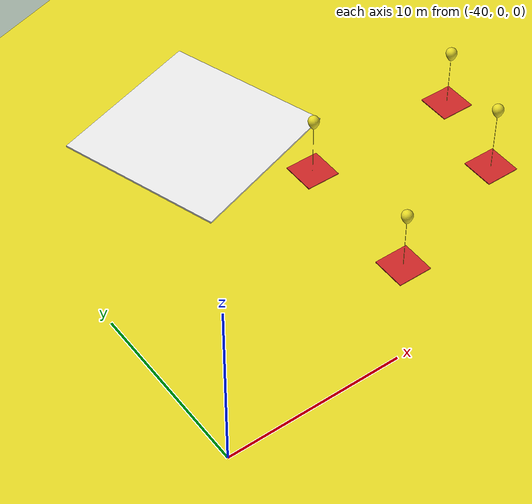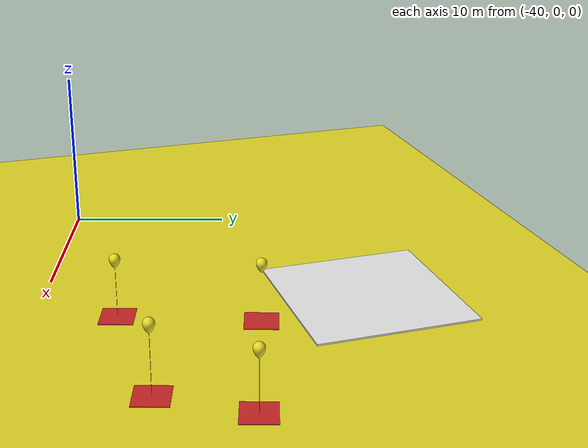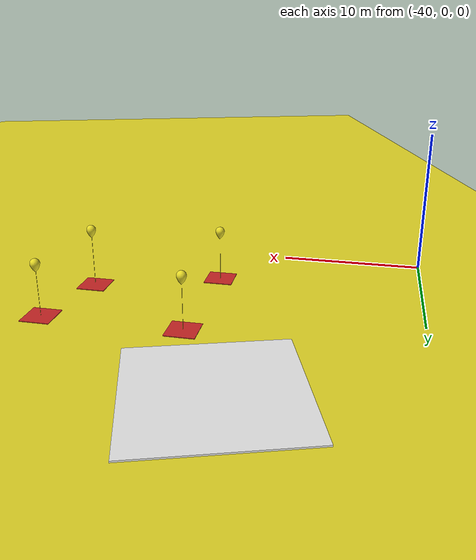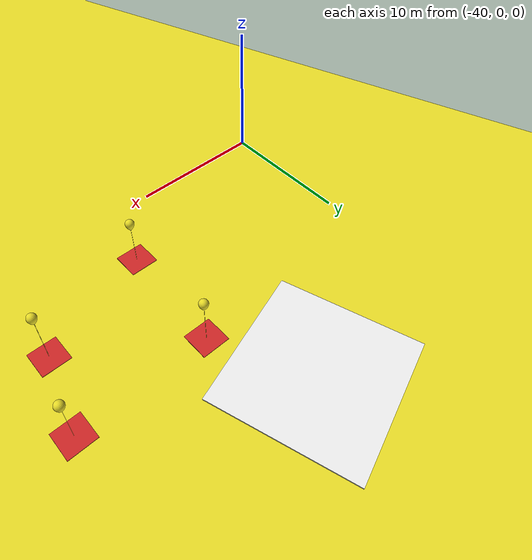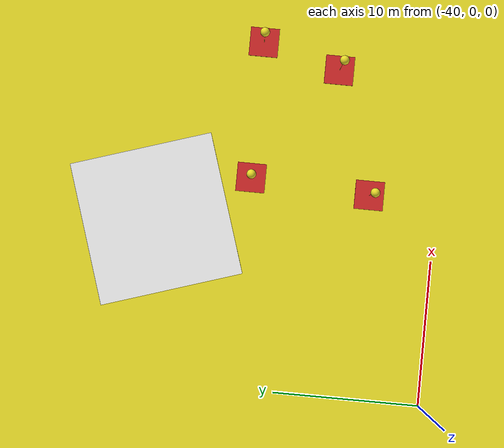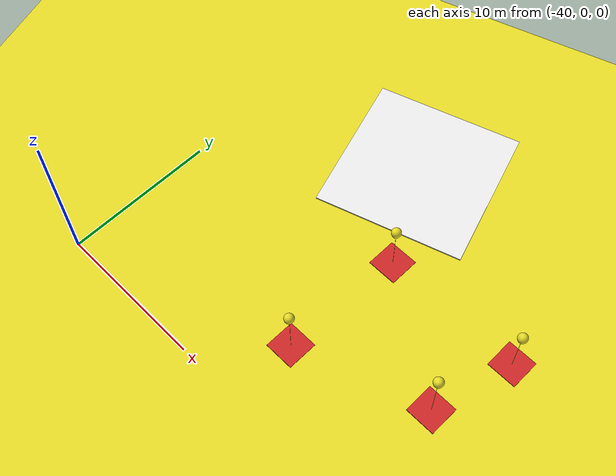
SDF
<sdf version="1.6">
 <world name="default">
  <model name="Balloon4.5m_clone_1">
   <link name="link_0">
    <pose>0 0 -0.025 0 -0 0</pose>
    <inertial>
     <mass>100</mass>
     <inertia>
      <ixx>0.166667</ixx>
      <ixy>0</ixy>
      <ixz>0</ixz>
      <iyy>0.166667</iyy>
      <iyz>0</iyz>
      <izz>0.166667</izz>
     </inertia>
    </inertial>
    <visual name="visual">
     <geometry><mesh><uri>/home/varun/MBZIRC_Arena/Balloon/Base.dae</uri><scale>1 1 1</scale></mesh></geometry>
     <material>
      <lighting>1</lighting>
      <script><uri>file://media/materials/scripts/gazebo.material</uri><name>Gazebo/Red</name></script>
      <shader type="vertex"><normal_map>__default__</normal_map></shader>
      <ambient>0.3 0.3 0.3 1</ambient>
      <diffuse>1 1 1 1</diffuse>
      <specular>0.1 0.1 0.1 1</specular>
      <emissive>0 0 0 1</emissive>
     </material>
    </visual>
    <collision name="collision">
     <geometry><mesh><uri>/home/varun/MBZIRC_Arena/Balloon/Base.dae</uri><scale>1 1 1</scale></mesh></geometry>
     <surface>
      <friction>
       <ode><mu>1</mu><mu2>1</mu2><fdir1>0 0 0</fdir1><slip1>0</slip1><slip2>0</slip2></ode>
       <torsional>
        <coefficient>1</coefficient>
        <patch_radius>0</patch_radius>
        <surface_radius>0</surface_radius>
        <use_patch_radius>1</use_patch_radius>
        <ode><slip>0</slip></ode>
       </torsional>
      </friction>
      <bounce><restitution_coefficient>0</restitution_coefficient><threshold>1e+06</threshold></bounce>
      <contact>
       <collide_without_contact>0</collide_without_contact>
       <collide_without_contact_bitmask>1</collide_without_contact_bitmask>
       <collide_bitmask>1</collide_bitmask>
       <ode>
        <soft_cfm>0</soft_cfm>
        <soft_erp>0.2</soft_erp>
        <kp>1e+13</kp>
        <kd>1</kd>
        <max_vel>0.01</max_vel>
        <min_depth>0</min_depth>
       </ode>
       <bullet>
        <split_impulse>1</split_impulse>
        <split_impulse_penetration_threshold>-0.01</split_impulse_penetration_threshold>
        <soft_cfm>0</soft_cfm>
        <soft_erp>0.2</soft_erp>
        <kp>1e+13</kp>
        <kd>1</kd>
       </bullet>
      </contact>
     </surface>
    </collision>
   </link>
   <link name="link_1">
    <pose>-0 -0 0.025 0 -0 0</pose>
    <inertial>
     <mass>0.2</mass>
     <inertia>
      <ixx>0.166667</ixx>
      <ixy>0</ixy>
      <ixz>0</ixz>
      <iyy>0.166667</iyy>
      <iyz>0</iyz>
      <izz>0.166667</izz>
     </inertia>
     <pose>0 0 4.5 0 -0 0</pose>
    </inertial>
    <visual name="visual">
     <geometry>
      <mesh><uri>/home/varun/MBZIRC_Arena/Balloon/Balloon4.5m.dae</uri><scale>1 1 1</scale></mesh>
     </geometry>
     <material>
      <lighting>1</lighting>
      <script><uri>file://media/materials/scripts/gazebo.material</uri><name>Gazebo/Yellow</name></script>
      <shader type="pixel"><normal_map>__default__</normal_map></shader>
      <ambient>0.3 0.3 0.3 1</ambient>
      <diffuse>0.7 0.7 0.7 1</diffuse>
      <specular>0.01 0.01 0.01 1</specular>
      <emissive>0 0 0 1</emissive>
     </material>
    </visual>
    <collision name="collision">
     <geometry>
      <mesh><uri>/home/varun/MBZIRC_Arena/Balloon/Balloon4.5m.dae</uri><scale>1 1 1</scale></mesh>
     </geometry>
     <surface>
      <friction>
       <ode><mu>1</mu><mu2>1</mu2><fdir1>0 0 0</fdir1><slip1>0</slip1><slip2>0</slip2></ode>
       <torsional>
        <coefficient>1</coefficient>
        <patch_radius>0</patch_radius>
        <surface_radius>0</surface_radius>
        <use_patch_radius>1</use_patch_radius>
        <ode><slip>0</slip></ode>
       </torsional>
      </friction>
      <bounce><restitution_coefficient>0</restitution_coefficient><threshold>1e+06</threshold></bounce>
      <contact>
       <collide_without_contact>0</collide_without_contact>
       <collide_without_contact_bitmask>1</collide_without_contact_bitmask>
       <collide_bitmask>1</collide_bitmask>
       <ode>
        <soft_cfm>0</soft_cfm>
        <soft_erp>0.2</soft_erp>
        <kp>1e+13</kp>
        <kd>1</kd>
        <max_vel>0.01</max_vel>
        <min_depth>0</min_depth>
       </ode>
       <bullet>
        <split_impulse>1</split_impulse>
        <split_impulse_penetration_threshold>-0.01</split_impulse_penetration_threshold>
        <soft_cfm>0</soft_cfm>
        <soft_erp>0.2</soft_erp>
        <kp>1e+13</kp>
        <kd>1</kd>
       </bullet>
      </contact>
     </surface>
    </collision>
   </link>
   <joint name="ball_joint" type="ball">
    <parent>link_0</parent>
    <child>link_1</child>
    <physics>
     <ode><limit><cfm>0</cfm><erp>0.2</erp></limit><suspension><cfm>0</cfm><erp>0.2</erp></suspension></ode>
    </physics>
   </joint>
   <static>0</static>
   <plugin name="wind_push" filename="libwind_push.so"/>
   <pose>-17.3798 7.50598 -0.132557 -0.000303 -0 0.000103</pose>
  </model>
  <model name="Balloon4m_clone">
   <link name="link_0">
    <pose>0 0 -0.025 0 -0 0</pose>
    <inertial>
     <mass>100</mass>
     <inertia>
      <ixx>0.166667</ixx>
      <ixy>0</ixy>
      <ixz>0</ixz>
      <iyy>0.166667</iyy>
      <iyz>0</iyz>
      <izz>0.166667</izz>
     </inertia>
    </inertial>
    <visual name="visual">
     <geometry><mesh><uri>/home/varun/MBZIRC_Arena/Balloon/Base.dae</uri><scale>1 1 1</scale></mesh></geometry>
     <material>
      <lighting>1</lighting>
      <script><uri>file://media/materials/scripts/gazebo.material</uri><name>Gazebo/Red</name></script>
      <shader type="vertex"><normal_map>__default__</normal_map></shader>
      <ambient>0.3 0.3 0.3 1</ambient>
      <diffuse>1 1 1 1</diffuse>
      <specular>0.1 0.1 0.1 1</specular>
      <emissive>0 0 0 1</emissive>
     </material>
    </visual>
    <collision name="collision">
     <geometry><mesh><uri>/home/varun/MBZIRC_Arena/Balloon/Base.dae</uri><scale>1 1 1</scale></mesh></geometry>
     <surface>
      <friction>
       <ode><mu>1</mu><mu2>1</mu2><fdir1>0 0 0</fdir1><slip1>0</slip1><slip2>0</slip2></ode>
       <torsional>
        <coefficient>1</coefficient>
        <patch_radius>0</patch_radius>
        <surface_radius>0</surface_radius>
        <use_patch_radius>1</use_patch_radius>
        <ode><slip>0</slip></ode>
       </torsional>
      </friction>
      <bounce><restitution_coefficient>0</restitution_coefficient><threshold>1e+06</threshold></bounce>
      <contact>
       <collide_without_contact>0</collide_without_contact>
       <collide_without_contact_bitmask>1</collide_without_contact_bitmask>
       <collide_bitmask>1</collide_bitmask>
       <ode>
        <soft_cfm>0</soft_cfm>
        <soft_erp>0.2</soft_erp>
        <kp>1e+13</kp>
        <kd>1</kd>
        <max_vel>0.01</max_vel>
        <min_depth>0</min_depth>
       </ode>
       <bullet>
        <split_impulse>1</split_impulse>
        <split_impulse_penetration_threshold>-0.01</split_impulse_penetration_threshold>
        <soft_cfm>0</soft_cfm>
        <soft_erp>0.2</soft_erp>
        <kp>1e+13</kp>
        <kd>1</kd>
       </bullet>
      </contact>
     </surface>
    </collision>
   </link>
   <link name="link_1">
    <pose>-0 -0 0.025 0 -0 0</pose>
    <inertial>
     <mass>0.2</mass>
     <inertia>
      <ixx>0.166667</ixx>
      <ixy>0</ixy>
      <ixz>0</ixz>
      <iyy>0.166667</iyy>
      <iyz>0</iyz>
      <izz>0.166667</izz>
     </inertia>
     <pose>0 0 4 0 -0 0</pose>
    </inertial>
    <visual name="visual">
     <geometry>
      <mesh><uri>/home/varun/MBZIRC_Arena/Balloon/Balloon4m.dae</uri><scale>1 1 1</scale></mesh>
     </geometry>
     <material>
      <lighting>1</lighting>
      <script><uri>file://media/materials/scripts/gazebo.material</uri><name>Gazebo/Yellow</name></script>
      <shader type="pixel"><normal_map>__default__</normal_map></shader>
      <ambient>0.3 0.3 0.3 1</ambient>
      <diffuse>0.7 0.7 0.7 1</diffuse>
      <specular>0.01 0.01 0.01 1</specular>
      <emissive>0 0 0 1</emissive>
     </material>
    </visual>
    <collision name="collision">
     <geometry>
      <mesh><uri>/home/varun/MBZIRC_Arena/Balloon/Balloon4m.dae</uri><scale>1 1 1</scale></mesh>
     </geometry>
     <surface>
      <friction>
       <ode><mu>1</mu><mu2>1</mu2><fdir1>0 0 0</fdir1><slip1>0</slip1><slip2>0</slip2></ode>
       <torsional>
        <coefficient>1</coefficient>
        <patch_radius>0</patch_radius>
        <surface_radius>0</surface_radius>
        <use_patch_radius>1</use_patch_radius>
        <ode><slip>0</slip></ode>
       </torsional>
      </friction>
      <bounce><restitution_coefficient>0</restitution_coefficient><threshold>1e+06</threshold></bounce>
      <contact>
       <collide_without_contact>0</collide_without_contact>
       <collide_without_contact_bitmask>1</collide_without_contact_bitmask>
       <collide_bitmask>1</collide_bitmask>
       <ode>
        <soft_cfm>0</soft_cfm>
        <soft_erp>0.2</soft_erp>
        <kp>1e+13</kp>
        <kd>1</kd>
        <max_vel>0.01</max_vel>
        <min_depth>0</min_depth>
       </ode>
       <bullet>
        <split_impulse>1</split_impulse>
        <split_impulse_penetration_threshold>-0.01</split_impulse_penetration_threshold>
        <soft_cfm>0</soft_cfm>
        <soft_erp>0.2</soft_erp>
        <kp>1e+13</kp>
        <kd>1</kd>
       </bullet>
      </contact>
     </surface>
    </collision>
   </link>
   <joint name="ball_joint" type="ball">
    <parent>link_0</parent>
    <child>link_1</child>
    <physics>
     <ode><limit><cfm>0</cfm><erp>0.2</erp></limit><suspension><cfm>0</cfm><erp>0.2</erp></suspension></ode>
    </physics>
   </joint>
   <static>0</static>
   <plugin name="wind_push" filename="libwind_push.so"/>
   <pose>-25.8445 4.64631 -0.132468 0 0.000214 -6.1e-05</pose>
  </model>
  <model name="Balloon5m">
   <link name="link_0">
    <pose>0 0 -0.025 0 -0 0</pose>
    <inertial>
     <mass>100</mass>
     <inertia>
      <ixx>0.166667</ixx>
      <ixy>0</ixy>
      <ixz>0</ixz>
      <iyy>0.166667</iyy>
      <iyz>0</iyz>
      <izz>0.166667</izz>
     </inertia>
    </inertial>
    <visual name="visual">
     <geometry><mesh><uri>/home/varun/MBZIRC_Arena/Balloon/Base.dae</uri><scale>1 1 1</scale></mesh></geometry>
     <material>
      <lighting>1</lighting>
      <script><uri>file://media/materials/scripts/gazebo.material</uri><name>Gazebo/Red</name></script>
      <shader type="vertex"><normal_map>__default__</normal_map></shader>
      <ambient>0.3 0.3 0.3 1</ambient>
      <diffuse>1 1 1 1</diffuse>
      <specular>0.1 0.1 0.1 1</specular>
      <emissive>0 0 0 1</emissive>
     </material>
    </visual>
    <collision name="collision">
     <geometry><mesh><uri>/home/varun/MBZIRC_Arena/Balloon/Base.dae</uri><scale>1 1 1</scale></mesh></geometry>
     <surface>
      <friction>
       <ode><mu>1</mu><mu2>1</mu2><fdir1>0 0 0</fdir1><slip1>0</slip1><slip2>0</slip2></ode>
       <torsional>
        <coefficient>1</coefficient>
        <patch_radius>0</patch_radius>
        <surface_radius>0</surface_radius>
        <use_patch_radius>1</use_patch_radius>
        <ode><slip>0</slip></ode>
       </torsional>
      </friction>
      <bounce><restitution_coefficient>0</restitution_coefficient><threshold>1e+06</threshold></bounce>
      <contact>
       <collide_without_contact>0</collide_without_contact>
       <collide_without_contact_bitmask>1</collide_without_contact_bitmask>
       <collide_bitmask>1</collide_bitmask>
       <ode>
        <soft_cfm>0</soft_cfm>
        <soft_erp>0.2</soft_erp>
        <kp>1e+13</kp>
        <kd>1</kd>
        <max_vel>0.01</max_vel>
        <min_depth>0</min_depth>
       </ode>
       <bullet>
        <split_impulse>1</split_impulse>
        <split_impulse_penetration_threshold>-0.01</split_impulse_penetration_threshold>
        <soft_cfm>0</soft_cfm>
        <soft_erp>0.2</soft_erp>
        <kp>1e+13</kp>
        <kd>1</kd>
       </bullet>
      </contact>
     </surface>
    </collision>
   </link>
   <link name="link_1">
    <pose>-0 -0 0.025 0 -0 0</pose>
    <inertial>
     <mass>0.2</mass>
     <inertia>
      <ixx>0.166667</ixx>
      <ixy>0</ixy>
      <ixz>0</ixz>
      <iyy>0.166667</iyy>
      <iyz>0</iyz>
      <izz>0.166667</izz>
     </inertia>
     <pose>0 0 5 0 -0 0</pose>
    </inertial>
    <visual name="visual">
     <geometry>
      <mesh><uri>/home/varun/MBZIRC_Arena/Balloon/Balloon5m.dae</uri><scale>1 1 1</scale></mesh>
     </geometry>
     <material>
      <lighting>1</lighting>
      <script><uri>file://media/materials/scripts/gazebo.material</uri><name>Gazebo/Yellow</name></script>
      <shader type="pixel"><normal_map>__default__</normal_map></shader>
      <ambient>0.3 0.3 0.3 1</ambient>
      <diffuse>0.7 0.7 0.7 1</diffuse>
      <specular>0.01 0.01 0.01 1</specular>
      <emissive>0 0 0 1</emissive>
     </material>
    </visual>
    <collision name="collision">
     <geometry>
      <mesh><uri>/home/varun/MBZIRC_Arena/Balloon/Balloon5m.dae</uri><scale>1 1 1</scale></mesh>
     </geometry>
     <surface>
      <friction>
       <ode><mu>1</mu><mu2>1</mu2><fdir1>0 0 0</fdir1><slip1>0</slip1><slip2>0</slip2></ode>
       <torsional>
        <coefficient>1</coefficient>
        <patch_radius>0</patch_radius>
        <surface_radius>0</surface_radius>
        <use_patch_radius>1</use_patch_radius>
        <ode><slip>0</slip></ode>
       </torsional>
      </friction>
      <bounce><restitution_coefficient>0</restitution_coefficient><threshold>1e+06</threshold></bounce>
      <contact>
       <collide_without_contact>0</collide_without_contact>
       <collide_without_contact_bitmask>1</collide_without_contact_bitmask>
       <collide_bitmask>1</collide_bitmask>
       <ode>
        <soft_cfm>0</soft_cfm>
        <soft_erp>0.2</soft_erp>
        <kp>1e+13</kp>
        <kd>1</kd>
        <max_vel>0.01</max_vel>
        <min_depth>0</min_depth>
       </ode>
       <bullet>
        <split_impulse>1</split_impulse>
        <split_impulse_penetration_threshold>-0.01</split_impulse_penetration_threshold>
        <soft_cfm>0</soft_cfm>
        <soft_erp>0.2</soft_erp>
        <kp>1e+13</kp>
        <kd>1</kd>
       </bullet>
      </contact>
     </surface>
    </collision>
   </link>
   <joint name="ball_joint" type="ball">
    <parent>link_0</parent>
    <child>link_1</child>
    <physics>
     <ode><limit><cfm>0</cfm><erp>0.2</erp></limit><suspension><cfm>0</cfm><erp>0.2</erp></suspension></ode>
    </physics>
   </joint>
   <static>0</static>
   <plugin name="wind_push" filename="libwind_push.so"/>
   <pose>-15.931 12.8942 -0.1324 0.000146 0 -2.3e-05</pose>
  </model>
  <model name="Balloon5m_clone_3">
   <link name="link_0">
    <pose>0 0 -0.025 0 -0 0</pose>
    <inertial>
     <mass>100</mass>
     <inertia>
      <ixx>0.166667</ixx>
      <ixy>0</ixy>
      <ixz>0</ixz>
      <iyy>0.166667</iyy>
      <iyz>0</iyz>
      <izz>0.166667</izz>
     </inertia>
    </inertial>
    <visual name="visual">
     <geometry><mesh><uri>/home/varun/MBZIRC_Arena/Balloon/Base.dae</uri><scale>1 1 1</scale></mesh></geometry>
     <material>
      <lighting>1</lighting>
      <script><uri>file://media/materials/scripts/gazebo.material</uri><name>Gazebo/Red</name></script>
      <shader type="vertex"><normal_map>__default__</normal_map></shader>
      <ambient>0.3 0.3 0.3 1</ambient>
      <diffuse>1 1 1 1</diffuse>
      <specular>0.1 0.1 0.1 1</specular>
      <emissive>0 0 0 1</emissive>
     </material>
    </visual>
    <collision name="collision">
     <geometry><mesh><uri>/home/varun/MBZIRC_Arena/Balloon/Base.dae</uri><scale>1 1 1</scale></mesh></geometry>
     <surface>
      <friction>
       <ode><mu>1</mu><mu2>1</mu2><fdir1>0 0 0</fdir1><slip1>0</slip1><slip2>0</slip2></ode>
       <torsional>
        <coefficient>1</coefficient>
        <patch_radius>0</patch_radius>
        <surface_radius>0</surface_radius>
        <use_patch_radius>1</use_patch_radius>
        <ode><slip>0</slip></ode>
       </torsional>
      </friction>
      <bounce><restitution_coefficient>0</restitution_coefficient><threshold>1e+06</threshold></bounce>
      <contact>
       <collide_without_contact>0</collide_without_contact>
       <collide_without_contact_bitmask>1</collide_without_contact_bitmask>
       <collide_bitmask>1</collide_bitmask>
       <ode>
        <soft_cfm>0</soft_cfm>
        <soft_erp>0.2</soft_erp>
        <kp>1e+13</kp>
        <kd>1</kd>
        <max_vel>0.01</max_vel>
        <min_depth>0</min_depth>
       </ode>
       <bullet>
        <split_impulse>1</split_impulse>
        <split_impulse_penetration_threshold>-0.01</split_impulse_penetration_threshold>
        <soft_cfm>0</soft_cfm>
        <soft_erp>0.2</soft_erp>
        <kp>1e+13</kp>
        <kd>1</kd>
       </bullet>
      </contact>
     </surface>
    </collision>
   </link>
   <link name="link_1">
    <pose>-0 -0 0.025 0 -0 0</pose>
    <inertial>
     <mass>0.2</mass>
     <inertia>
      <ixx>0.166667</ixx>
      <ixy>0</ixy>
      <ixz>0</ixz>
      <iyy>0.166667</iyy>
      <iyz>0</iyz>
      <izz>0.166667</izz>
     </inertia>
     <pose>0 0 5 0 -0 0</pose>
    </inertial>
    <visual name="visual">
     <geometry>
      <mesh><uri>/home/varun/MBZIRC_Arena/Balloon/Balloon5m.dae</uri><scale>1 1 1</scale></mesh>
     </geometry>
     <material>
      <lighting>1</lighting>
      <script><uri>file://media/materials/scripts/gazebo.material</uri><name>Gazebo/Yellow</name></script>
      <shader type="pixel"><normal_map>__default__</normal_map></shader>
      <ambient>0.3 0.3 0.3 1</ambient>
      <diffuse>0.7 0.7 0.7 1</diffuse>
      <specular>0.01 0.01 0.01 1</specular>
      <emissive>0 0 0 1</emissive>
     </material>
    </visual>
    <collision name="collision">
     <geometry>
      <mesh><uri>/home/varun/MBZIRC_Arena/Balloon/Balloon5m.dae</uri><scale>1 1 1</scale></mesh>
     </geometry>
     <surface>
      <friction>
       <ode><mu>1</mu><mu2>1</mu2><fdir1>0 0 0</fdir1><slip1>0</slip1><slip2>0</slip2></ode>
       <torsional>
        <coefficient>1</coefficient>
        <patch_radius>0</patch_radius>
        <surface_radius>0</surface_radius>
        <use_patch_radius>1</use_patch_radius>
        <ode><slip>0</slip></ode>
       </torsional>
      </friction>
      <bounce><restitution_coefficient>0</restitution_coefficient><threshold>1e+06</threshold></bounce>
      <contact>
       <collide_without_contact>0</collide_without_contact>
       <collide_without_contact_bitmask>1</collide_without_contact_bitmask>
       <collide_bitmask>1</collide_bitmask>
       <ode>
        <soft_cfm>0</soft_cfm>
        <soft_erp>0.2</soft_erp>
        <kp>1e+13</kp>
        <kd>1</kd>
        <max_vel>0.01</max_vel>
        <min_depth>0</min_depth>
       </ode>
       <bullet>
        <split_impulse>1</split_impulse>
        <split_impulse_penetration_threshold>-0.01</split_impulse_penetration_threshold>
        <soft_cfm>0</soft_cfm>
        <soft_erp>0.2</soft_erp>
        <kp>1e+13</kp>
        <kd>1</kd>
       </bullet>
      </contact>
     </surface>
    </collision>
   </link>
   <joint name="ball_joint" type="ball">
    <parent>link_0</parent>
    <child>link_1</child>
    <physics>
     <ode><limit><cfm>0</cfm><erp>0.2</erp></limit><suspension><cfm>0</cfm><erp>0.2</erp></suspension></ode>
    </physics>
   </joint>
   <static>0</static>
   <plugin name="wind_push" filename="libwind_push.so"/>
   <pose>-25.3926 12.9106 -0.132567 0.000313 -0 -0.000105</pose>
  </model>
  <model name="Arena100x60">
   <link name="link_0">
    <pose>-0.32495 -17.8056 -0.257254 0 -0 0</pose>
    <inertial>
     <mass>100</mass>
     <inertia>
      <ixx>0.166667</ixx>
      <ixy>0</ixy>
      <ixz>0</ixz>
      <iyy>0.166667</iyy>
      <iyz>0</iyz>
      <izz>0.166667</izz>
     </inertia>
    </inertial>
    <visual name="visual">
     <geometry><mesh><uri>/home/varun/MBZIRC_Arena/Arena100x60.dae</uri><scale>1 1 1</scale></mesh></geometry>
     <material>
      <lighting>1</lighting>
      <script><uri>file://media/materials/scripts/gazebo.material</uri><name>Gazebo/Yellow</name></script>
      <ambient>0 1 0 1</ambient>
      <diffuse>0.4 0.9 0.4 1</diffuse>
      <specular>0.01 0.01 0.01 1</specular>
      <emissive>0 0 0 1</emissive>
      <shader type="vertex"><normal_map>__default__</normal_map></shader>
     </material>
    </visual>
    <collision name="collision">
     <geometry><mesh><uri>/home/varun/MBZIRC_Arena/Arena100x60.dae</uri><scale>1 1 1</scale></mesh></geometry>
     <surface>
      <friction>
       <ode><mu>1</mu><mu2>1</mu2><fdir1>0 0 0</fdir1><slip1>0</slip1><slip2>0</slip2></ode>
       <torsional>
        <coefficient>1</coefficient>
        <patch_radius>0</patch_radius>
        <surface_radius>0</surface_radius>
        <use_patch_radius>1</use_patch_radius>
        <ode><slip>0</slip></ode>
       </torsional>
      </friction>
      <bounce><restitution_coefficient>0</restitution_coefficient><threshold>1e+06</threshold></bounce>
      <contact>
       <collide_without_contact>0</collide_without_contact>
       <collide_without_contact_bitmask>1</collide_without_contact_bitmask>
       <collide_bitmask>1</collide_bitmask>
       <ode>
        <soft_cfm>0</soft_cfm>
        <soft_erp>0.2</soft_erp>
        <kp>1e+13</kp>
        <kd>1</kd>
        <max_vel>0.01</max_vel>
        <min_depth>0</min_depth>
       </ode>
       <bullet>
        <split_impulse>1</split_impulse>
        <split_impulse_penetration_threshold>-0.01</split_impulse_penetration_threshold>
        <soft_cfm>0</soft_cfm>
        <soft_erp>0.2</soft_erp>
        <kp>1e+13</kp>
        <kd>1</kd>
       </bullet>
      </contact>
     </surface>
    </collision>
   </link>
   <link name="link_1">
    <pose>0.414949 17.8056 -0.142746 0 -0 0</pose>
    <inertial>
     <mass>100</mass>
     <inertia>
      <ixx>0.166667</ixx>
      <ixy>0</ixy>
      <ixz>0</ixz>
      <iyy>0.166667</iyy>
      <iyz>0</iyz>
      <izz>0.166667</izz>
     </inertia>
    </inertial>
    <visual name="visual">
     <geometry><mesh><uri>/home/varun/MBZIRC_Arena/StartLocation.dae</uri><scale>1 1 1</scale></mesh></geometry>
     <material>
      <lighting>1</lighting>
      <script><uri>file://media/materials/scripts/gazebo.material</uri><name>Gazebo/White</name></script>
      <ambient>0.3 0.3 0.3 1</ambient>
      <diffuse>0.7 0.7 0.7 1</diffuse>
      <specular>0.01 0.01 0.01 1</specular>
      <emissive>0 0 0 1</emissive>
      <shader type="vertex"><normal_map>__default__</normal_map></shader>
     </material>
    </visual>
    <collision name="collision">
     <geometry><mesh><uri>/home/varun/MBZIRC_Arena/StartLocation.dae</uri><scale>1 1 1</scale></mesh></geometry>
     <surface>
      <friction>
       <ode><mu>1</mu><mu2>1</mu2><fdir1>0 0 0</fdir1><slip1>0</slip1><slip2>0</slip2></ode>
       <torsional>
        <coefficient>1</coefficient>
        <patch_radius>0</patch_radius>
        <surface_radius>0</surface_radius>
        <use_patch_radius>1</use_patch_radius>
        <ode><slip>0</slip></ode>
       </torsional>
      </friction>
      <bounce><restitution_coefficient>0</restitution_coefficient><threshold>1e+06</threshold></bounce>
      <contact>
       <collide_without_contact>0</collide_without_contact>
       <collide_without_contact_bitmask>1</collide_without_contact_bitmask>
       <collide_bitmask>1</collide_bitmask>
       <ode>
        <soft_cfm>0</soft_cfm>
        <soft_erp>0.2</soft_erp>
        <kp>1e+13</kp>
        <kd>1</kd>
        <max_vel>0.01</max_vel>
        <min_depth>0</min_depth>
       </ode>
       <bullet>
        <split_impulse>1</split_impulse>
        <split_impulse_penetration_threshold>-0.01</split_impulse_penetration_threshold>
        <soft_cfm>0</soft_cfm>
        <soft_erp>0.2</soft_erp>
        <kp>1e+13</kp>
        <kd>1</kd>
       </bullet>
      </contact>
     </surface>
    </collision>
   </link>
   <static>1</static>
   <pose>-23.7477 2.11704 0 0 -0 0.314159</pose>
  </model>
 </world>
</sdf>
